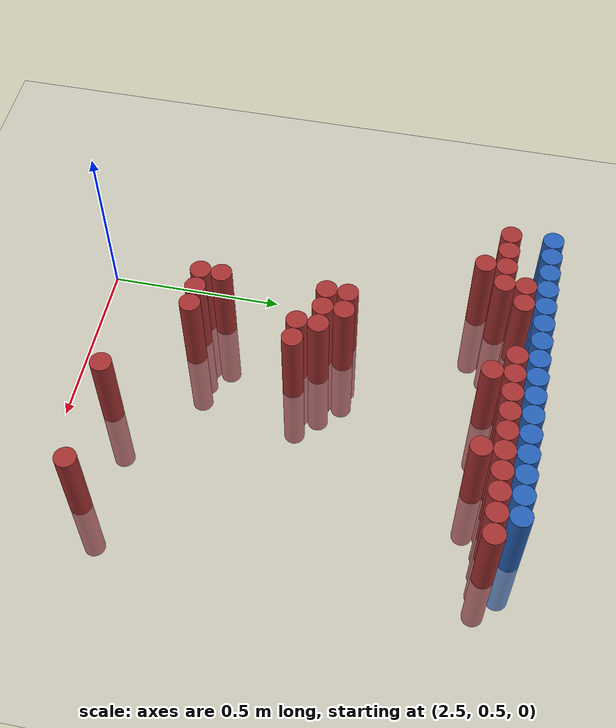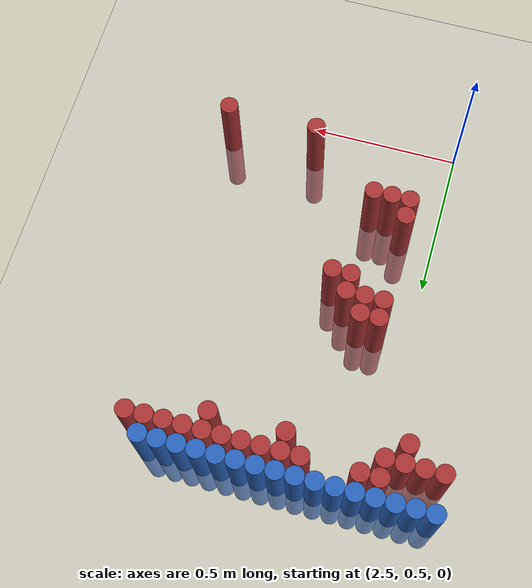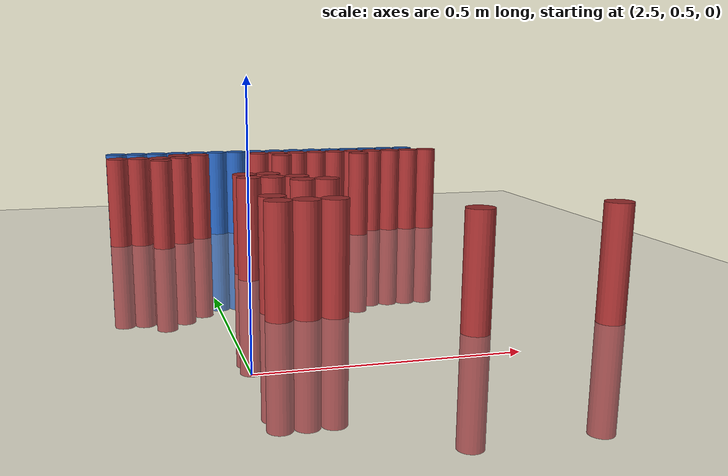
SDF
<sdf version="1.6">
 <world name="default">
  <model name="ground_plane">
   <static>1</static>
   <link name="link">
    <collision name="collision">
     <geometry><plane><normal>0 0 1</normal><size>100 100</size></plane></geometry>
     <surface><friction><ode><mu>100</mu><mu2>50</mu2></ode></friction></surface>
    </collision>
    <visual name="visual">
     <cast_shadows>0</cast_shadows>
     <geometry><plane><normal>0 0 1</normal><size>100 100</size></plane></geometry>
     <material>
      <script><uri>file://media/materials/scripts/gazebo.material</uri><name>Gazebo/Grey</name></script>
     </material>
    </visual>
   </link>
  </model>
  <model name="unit_cylinder_99">
   <static>1</static>
   <pose>2.310000 1.770000 0.000000 0.000000 0.000000 0.000000</pose>
   <link name="link">
    <inertial>
     <mass>1</mass>
     <inertia><ixx>0.145833</ixx><ixy>0</ixy><ixz>0</ixz><iyy>0.145833</iyy><iyz>0</iyz><izz>0.125</izz></inertia>
    </inertial>
    <collision name="collision">
     <geometry><cylinder><radius>0.030000</radius><length>0.5</length></cylinder></geometry>
    </collision>
    <visual name="visual">
     <geometry><cylinder><radius>0.030000</radius><length>0.5</length></cylinder></geometry>
     <material>
      <ambient>0.152000 0.379000 0.720000 1</ambient>
      <diffuse>0.152000 0.379000 0.720000 1</diffuse>
     </material>
     <material>
      <script><name>Gazebo/Grey</name><uri>file://media/materials/scripts/gazebo.material</uri></script>
     </material>
    </visual>
   </link>
  </model>
  <model name="unit_cylinder_100">
   <static>1</static>
   <pose>2.370000 1.770000 0.000000 0.000000 0.000000 0.000000</pose>
   <link name="link">
    <inertial>
     <mass>1</mass>
     <inertia><ixx>0.145833</ixx><ixy>0</ixy><ixz>0</ixz><iyy>0.145833</iyy><iyz>0</iyz><izz>0.125</izz></inertia>
    </inertial>
    <collision name="collision">
     <geometry><cylinder><radius>0.030000</radius><length>0.5</length></cylinder></geometry>
    </collision>
    <visual name="visual">
     <geometry><cylinder><radius>0.030000</radius><length>0.5</length></cylinder></geometry>
     <material>
      <ambient>0.152000 0.379000 0.720000 1</ambient>
      <diffuse>0.152000 0.379000 0.720000 1</diffuse>
     </material>
     <material>
      <script><name>Gazebo/Grey</name><uri>file://media/materials/scripts/gazebo.material</uri></script>
     </material>
    </visual>
   </link>
  </model>
  <model name="unit_cylinder_101">
   <static>1</static>
   <pose>2.430000 1.770000 0.000000 0.000000 0.000000 0.000000</pose>
   <link name="link">
    <inertial>
     <mass>1</mass>
     <inertia><ixx>0.145833</ixx><ixy>0</ixy><ixz>0</ixz><iyy>0.145833</iyy><iyz>0</iyz><izz>0.125</izz></inertia>
    </inertial>
    <collision name="collision">
     <geometry><cylinder><radius>0.030000</radius><length>0.5</length></cylinder></geometry>
    </collision>
    <visual name="visual">
     <geometry><cylinder><radius>0.030000</radius><length>0.5</length></cylinder></geometry>
     <material>
      <ambient>0.152000 0.379000 0.720000 1</ambient>
      <diffuse>0.152000 0.379000 0.720000 1</diffuse>
     </material>
     <material>
      <script><name>Gazebo/Grey</name><uri>file://media/materials/scripts/gazebo.material</uri></script>
     </material>
    </visual>
   </link>
  </model>
  <model name="unit_cylinder_102">
   <static>1</static>
   <pose>2.490000 1.770000 0.000000 0.000000 0.000000 0.000000</pose>
   <link name="link">
    <inertial>
     <mass>1</mass>
     <inertia><ixx>0.145833</ixx><ixy>0</ixy><ixz>0</ixz><iyy>0.145833</iyy><iyz>0</iyz><izz>0.125</izz></inertia>
    </inertial>
    <collision name="collision">
     <geometry><cylinder><radius>0.030000</radius><length>0.5</length></cylinder></geometry>
    </collision>
    <visual name="visual">
     <geometry><cylinder><radius>0.030000</radius><length>0.5</length></cylinder></geometry>
     <material>
      <ambient>0.152000 0.379000 0.720000 1</ambient>
      <diffuse>0.152000 0.379000 0.720000 1</diffuse>
     </material>
     <material>
      <script><name>Gazebo/Grey</name><uri>file://media/materials/scripts/gazebo.material</uri></script>
     </material>
    </visual>
   </link>
  </model>
  <model name="unit_cylinder_103">
   <static>1</static>
   <pose>2.550000 1.770000 0.000000 0.000000 0.000000 0.000000</pose>
   <link name="link">
    <inertial>
     <mass>1</mass>
     <inertia><ixx>0.145833</ixx><ixy>0</ixy><ixz>0</ixz><iyy>0.145833</iyy><iyz>0</iyz><izz>0.125</izz></inertia>
    </inertial>
    <collision name="collision">
     <geometry><cylinder><radius>0.030000</radius><length>0.5</length></cylinder></geometry>
    </collision>
    <visual name="visual">
     <geometry><cylinder><radius>0.030000</radius><length>0.5</length></cylinder></geometry>
     <material>
      <ambient>0.152000 0.379000 0.720000 1</ambient>
      <diffuse>0.152000 0.379000 0.720000 1</diffuse>
     </material>
     <material>
      <script><name>Gazebo/Grey</name><uri>file://media/materials/scripts/gazebo.material</uri></script>
     </material>
    </visual>
   </link>
  </model>
  <model name="unit_cylinder_104">
   <static>1</static>
   <pose>2.610000 1.770000 0.000000 0.000000 0.000000 0.000000</pose>
   <link name="link">
    <inertial>
     <mass>1</mass>
     <inertia><ixx>0.145833</ixx><ixy>0</ixy><ixz>0</ixz><iyy>0.145833</iyy><iyz>0</iyz><izz>0.125</izz></inertia>
    </inertial>
    <collision name="collision">
     <geometry><cylinder><radius>0.030000</radius><length>0.5</length></cylinder></geometry>
    </collision>
    <visual name="visual">
     <geometry><cylinder><radius>0.030000</radius><length>0.5</length></cylinder></geometry>
     <material>
      <ambient>0.152000 0.379000 0.720000 1</ambient>
      <diffuse>0.152000 0.379000 0.720000 1</diffuse>
     </material>
     <material>
      <script><name>Gazebo/Grey</name><uri>file://media/materials/scripts/gazebo.material</uri></script>
     </material>
    </visual>
   </link>
  </model>
  <model name="unit_cylinder_105">
   <static>1</static>
   <pose>2.670000 1.770000 0.000000 0.000000 0.000000 0.000000</pose>
   <link name="link">
    <inertial>
     <mass>1</mass>
     <inertia><ixx>0.145833</ixx><ixy>0</ixy><ixz>0</ixz><iyy>0.145833</iyy><iyz>0</iyz><izz>0.125</izz></inertia>
    </inertial>
    <collision name="collision">
     <geometry><cylinder><radius>0.030000</radius><length>0.5</length></cylinder></geometry>
    </collision>
    <visual name="visual">
     <geometry><cylinder><radius>0.030000</radius><length>0.5</length></cylinder></geometry>
     <material>
      <ambient>0.152000 0.379000 0.720000 1</ambient>
      <diffuse>0.152000 0.379000 0.720000 1</diffuse>
     </material>
     <material>
      <script><name>Gazebo/Grey</name><uri>file://media/materials/scripts/gazebo.material</uri></script>
     </material>
    </visual>
   </link>
  </model>
  <model name="unit_cylinder_106">
   <static>1</static>
   <pose>2.730000 1.770000 0.000000 0.000000 0.000000 0.000000</pose>
   <link name="link">
    <inertial>
     <mass>1</mass>
     <inertia><ixx>0.145833</ixx><ixy>0</ixy><ixz>0</ixz><iyy>0.145833</iyy><iyz>0</iyz><izz>0.125</izz></inertia>
    </inertial>
    <collision name="collision">
     <geometry><cylinder><radius>0.030000</radius><length>0.5</length></cylinder></geometry>
    </collision>
    <visual name="visual">
     <geometry><cylinder><radius>0.030000</radius><length>0.5</length></cylinder></geometry>
     <material>
      <ambient>0.152000 0.379000 0.720000 1</ambient>
      <diffuse>0.152000 0.379000 0.720000 1</diffuse>
     </material>
     <material>
      <script><name>Gazebo/Grey</name><uri>file://media/materials/scripts/gazebo.material</uri></script>
     </material>
    </visual>
   </link>
  </model>
  <model name="unit_cylinder_107">
   <static>1</static>
   <pose>2.790000 1.770000 0.000000 0.000000 0.000000 0.000000</pose>
   <link name="link">
    <inertial>
     <mass>1</mass>
     <inertia><ixx>0.145833</ixx><ixy>0</ixy><ixz>0</ixz><iyy>0.145833</iyy><iyz>0</iyz><izz>0.125</izz></inertia>
    </inertial>
    <collision name="collision">
     <geometry><cylinder><radius>0.030000</radius><length>0.5</length></cylinder></geometry>
    </collision>
    <visual name="visual">
     <geometry><cylinder><radius>0.030000</radius><length>0.5</length></cylinder></geometry>
     <material>
      <ambient>0.152000 0.379000 0.720000 1</ambient>
      <diffuse>0.152000 0.379000 0.720000 1</diffuse>
     </material>
     <material>
      <script><name>Gazebo/Grey</name><uri>file://media/materials/scripts/gazebo.material</uri></script>
     </material>
    </visual>
   </link>
  </model>
  <model name="unit_cylinder_108">
   <static>1</static>
   <pose>2.850000 1.770000 0.000000 0.000000 0.000000 0.000000</pose>
   <link name="link">
    <inertial>
     <mass>1</mass>
     <inertia><ixx>0.145833</ixx><ixy>0</ixy><ixz>0</ixz><iyy>0.145833</iyy><iyz>0</iyz><izz>0.125</izz></inertia>
    </inertial>
    <collision name="collision">
     <geometry><cylinder><radius>0.030000</radius><length>0.5</length></cylinder></geometry>
    </collision>
    <visual name="visual">
     <geometry><cylinder><radius>0.030000</radius><length>0.5</length></cylinder></geometry>
     <material>
      <ambient>0.152000 0.379000 0.720000 1</ambient>
      <diffuse>0.152000 0.379000 0.720000 1</diffuse>
     </material>
     <material>
      <script><name>Gazebo/Grey</name><uri>file://media/materials/scripts/gazebo.material</uri></script>
     </material>
    </visual>
   </link>
  </model>
  <model name="unit_cylinder_109">
   <static>1</static>
   <pose>2.910000 1.770000 0.000000 0.000000 0.000000 0.000000</pose>
   <link name="link">
    <inertial>
     <mass>1</mass>
     <inertia><ixx>0.145833</ixx><ixy>0</ixy><ixz>0</ixz><iyy>0.145833</iyy><iyz>0</iyz><izz>0.125</izz></inertia>
    </inertial>
    <collision name="collision">
     <geometry><cylinder><radius>0.030000</radius><length>0.5</length></cylinder></geometry>
    </collision>
    <visual name="visual">
     <geometry><cylinder><radius>0.030000</radius><length>0.5</length></cylinder></geometry>
     <material>
      <ambient>0.152000 0.379000 0.720000 1</ambient>
      <diffuse>0.152000 0.379000 0.720000 1</diffuse>
     </material>
     <material>
      <script><name>Gazebo/Grey</name><uri>file://media/materials/scripts/gazebo.material</uri></script>
     </material>
    </visual>
   </link>
  </model>
  <model name="unit_cylinder_110">
   <static>1</static>
   <pose>2.970000 1.770000 0.000000 0.000000 0.000000 0.000000</pose>
   <link name="link">
    <inertial>
     <mass>1</mass>
     <inertia><ixx>0.145833</ixx><ixy>0</ixy><ixz>0</ixz><iyy>0.145833</iyy><iyz>0</iyz><izz>0.125</izz></inertia>
    </inertial>
    <collision name="collision">
     <geometry><cylinder><radius>0.030000</radius><length>0.5</length></cylinder></geometry>
    </collision>
    <visual name="visual">
     <geometry><cylinder><radius>0.030000</radius><length>0.5</length></cylinder></geometry>
     <material>
      <ambient>0.152000 0.379000 0.720000 1</ambient>
      <diffuse>0.152000 0.379000 0.720000 1</diffuse>
     </material>
     <material>
      <script><name>Gazebo/Grey</name><uri>file://media/materials/scripts/gazebo.material</uri></script>
     </material>
    </visual>
   </link>
  </model>
  <model name="unit_cylinder_111">
   <static>1</static>
   <pose>3.030000 1.770000 0.000000 0.000000 0.000000 0.000000</pose>
   <link name="link">
    <inertial>
     <mass>1</mass>
     <inertia><ixx>0.145833</ixx><ixy>0</ixy><ixz>0</ixz><iyy>0.145833</iyy><iyz>0</iyz><izz>0.125</izz></inertia>
    </inertial>
    <collision name="collision">
     <geometry><cylinder><radius>0.030000</radius><length>0.5</length></cylinder></geometry>
    </collision>
    <visual name="visual">
     <geometry><cylinder><radius>0.030000</radius><length>0.5</length></cylinder></geometry>
     <material>
      <ambient>0.152000 0.379000 0.720000 1</ambient>
      <diffuse>0.152000 0.379000 0.720000 1</diffuse>
     </material>
     <material>
      <script><name>Gazebo/Grey</name><uri>file://media/materials/scripts/gazebo.material</uri></script>
     </material>
    </visual>
   </link>
  </model>
  <model name="unit_cylinder_112">
   <static>1</static>
   <pose>3.090000 1.770000 0.000000 0.000000 0.000000 0.000000</pose>
   <link name="link">
    <inertial>
     <mass>1</mass>
     <inertia><ixx>0.145833</ixx><ixy>0</ixy><ixz>0</ixz><iyy>0.145833</iyy><iyz>0</iyz><izz>0.125</izz></inertia>
    </inertial>
    <collision name="collision">
     <geometry><cylinder><radius>0.030000</radius><length>0.5</length></cylinder></geometry>
    </collision>
    <visual name="visual">
     <geometry><cylinder><radius>0.030000</radius><length>0.5</length></cylinder></geometry>
     <material>
      <ambient>0.152000 0.379000 0.720000 1</ambient>
      <diffuse>0.152000 0.379000 0.720000 1</diffuse>
     </material>
     <material>
      <script><name>Gazebo/Grey</name><uri>file://media/materials/scripts/gazebo.material</uri></script>
     </material>
    </visual>
   </link>
  </model>
  <model name="unit_cylinder_113">
   <static>1</static>
   <pose>3.150000 1.770000 0.000000 0.000000 0.000000 0.000000</pose>
   <link name="link">
    <inertial>
     <mass>1</mass>
     <inertia><ixx>0.145833</ixx><ixy>0</ixy><ixz>0</ixz><iyy>0.145833</iyy><iyz>0</iyz><izz>0.125</izz></inertia>
    </inertial>
    <collision name="collision">
     <geometry><cylinder><radius>0.030000</radius><length>0.5</length></cylinder></geometry>
    </collision>
    <visual name="visual">
     <geometry><cylinder><radius>0.030000</radius><length>0.5</length></cylinder></geometry>
     <material>
      <ambient>0.152000 0.379000 0.720000 1</ambient>
      <diffuse>0.152000 0.379000 0.720000 1</diffuse>
     </material>
     <material>
      <script><name>Gazebo/Grey</name><uri>file://media/materials/scripts/gazebo.material</uri></script>
     </material>
    </visual>
   </link>
  </model>
  <model name="unit_cylinder_114">
   <static>1</static>
   <pose>3.210000 1.770000 0.000000 0.000000 0.000000 0.000000</pose>
   <link name="link">
    <inertial>
     <mass>1</mass>
     <inertia><ixx>0.145833</ixx><ixy>0</ixy><ixz>0</ixz><iyy>0.145833</iyy><iyz>0</iyz><izz>0.125</izz></inertia>
    </inertial>
    <collision name="collision">
     <geometry><cylinder><radius>0.030000</radius><length>0.5</length></cylinder></geometry>
    </collision>
    <visual name="visual">
     <geometry><cylinder><radius>0.030000</radius><length>0.5</length></cylinder></geometry>
     <material>
      <ambient>0.152000 0.379000 0.720000 1</ambient>
      <diffuse>0.152000 0.379000 0.720000 1</diffuse>
     </material>
     <material>
      <script><name>Gazebo/Grey</name><uri>file://media/materials/scripts/gazebo.material</uri></script>
     </material>
    </visual>
   </link>
  </model>
  <model name="unit_cylinder_126">
   <static>1</static>
   <pose>2.490000 1.710000 0.000000 0.000000 0.000000 0.000000</pose>
   <link name="link">
    <inertial>
     <mass>1</mass>
     <inertia><ixx>0.145833</ixx><ixy>0</ixy><ixz>0</ixz><iyy>0.145833</iyy><iyz>0</iyz><izz>0.125</izz></inertia>
    </inertial>
    <collision name="collision">
     <geometry><cylinder><radius>0.030000</radius><length>0.5</length></cylinder></geometry>
    </collision>
    <visual name="visual">
     <geometry><cylinder><radius>0.030000</radius><length>0.5</length></cylinder></geometry>
     <material>
      <ambient>0.648000 0.192000 0.192000 1</ambient>
      <diffuse>0.648000 0.192000 0.192000 1</diffuse>
     </material>
     <material>
      <script><name>Gazebo/Grey</name><uri>file://media/materials/scripts/gazebo.material</uri></script>
     </material>
    </visual>
   </link>
  </model>
  <model name="unit_cylinder_127">
   <static>1</static>
   <pose>2.550000 1.710000 0.000000 0.000000 0.000000 0.000000</pose>
   <link name="link">
    <inertial>
     <mass>1</mass>
     <inertia><ixx>0.145833</ixx><ixy>0</ixy><ixz>0</ixz><iyy>0.145833</iyy><iyz>0</iyz><izz>0.125</izz></inertia>
    </inertial>
    <collision name="collision">
     <geometry><cylinder><radius>0.030000</radius><length>0.5</length></cylinder></geometry>
    </collision>
    <visual name="visual">
     <geometry><cylinder><radius>0.030000</radius><length>0.5</length></cylinder></geometry>
     <material>
      <ambient>0.648000 0.192000 0.192000 1</ambient>
      <diffuse>0.648000 0.192000 0.192000 1</diffuse>
     </material>
     <material>
      <script><name>Gazebo/Grey</name><uri>file://media/materials/scripts/gazebo.material</uri></script>
     </material>
    </visual>
   </link>
  </model>
  <model name="unit_cylinder_128">
   <static>1</static>
   <pose>2.730000 1.710000 0.000000 0.000000 0.000000 0.000000</pose>
   <link name="link">
    <inertial>
     <mass>1</mass>
     <inertia><ixx>0.145833</ixx><ixy>0</ixy><ixz>0</ixz><iyy>0.145833</iyy><iyz>0</iyz><izz>0.125</izz></inertia>
    </inertial>
    <collision name="collision">
     <geometry><cylinder><radius>0.030000</radius><length>0.5</length></cylinder></geometry>
    </collision>
    <visual name="visual">
     <geometry><cylinder><radius>0.030000</radius><length>0.5</length></cylinder></geometry>
     <material>
      <ambient>0.648000 0.192000 0.192000 1</ambient>
      <diffuse>0.648000 0.192000 0.192000 1</diffuse>
     </material>
     <material>
      <script><name>Gazebo/Grey</name><uri>file://media/materials/scripts/gazebo.material</uri></script>
     </material>
    </visual>
   </link>
  </model>
  <model name="unit_cylinder_129">
   <static>1</static>
   <pose>2.790000 1.710000 0.000000 0.000000 0.000000 0.000000</pose>
   <link name="link">
    <inertial>
     <mass>1</mass>
     <inertia><ixx>0.145833</ixx><ixy>0</ixy><ixz>0</ixz><iyy>0.145833</iyy><iyz>0</iyz><izz>0.125</izz></inertia>
    </inertial>
    <collision name="collision">
     <geometry><cylinder><radius>0.030000</radius><length>0.5</length></cylinder></geometry>
    </collision>
    <visual name="visual">
     <geometry><cylinder><radius>0.030000</radius><length>0.5</length></cylinder></geometry>
     <material>
      <ambient>0.648000 0.192000 0.192000 1</ambient>
      <diffuse>0.648000 0.192000 0.192000 1</diffuse>
     </material>
     <material>
      <script><name>Gazebo/Grey</name><uri>file://media/materials/scripts/gazebo.material</uri></script>
     </material>
    </visual>
   </link>
  </model>
  <model name="unit_cylinder_130">
   <static>1</static>
   <pose>2.850000 1.710000 0.000000 0.000000 0.000000 0.000000</pose>
   <link name="link">
    <inertial>
     <mass>1</mass>
     <inertia><ixx>0.145833</ixx><ixy>0</ixy><ixz>0</ixz><iyy>0.145833</iyy><iyz>0</iyz><izz>0.125</izz></inertia>
    </inertial>
    <collision name="collision">
     <geometry><cylinder><radius>0.030000</radius><length>0.5</length></cylinder></geometry>
    </collision>
    <visual name="visual">
     <geometry><cylinder><radius>0.030000</radius><length>0.5</length></cylinder></geometry>
     <material>
      <ambient>0.648000 0.192000 0.192000 1</ambient>
      <diffuse>0.648000 0.192000 0.192000 1</diffuse>
     </material>
     <material>
      <script><name>Gazebo/Grey</name><uri>file://media/materials/scripts/gazebo.material</uri></script>
     </material>
    </visual>
   </link>
  </model>
  <model name="unit_cylinder_131">
   <static>1</static>
   <pose>2.910000 1.710000 0.000000 0.000000 0.000000 0.000000</pose>
   <link name="link">
    <inertial>
     <mass>1</mass>
     <inertia><ixx>0.145833</ixx><ixy>0</ixy><ixz>0</ixz><iyy>0.145833</iyy><iyz>0</iyz><izz>0.125</izz></inertia>
    </inertial>
    <collision name="collision">
     <geometry><cylinder><radius>0.030000</radius><length>0.5</length></cylinder></geometry>
    </collision>
    <visual name="visual">
     <geometry><cylinder><radius>0.030000</radius><length>0.5</length></cylinder></geometry>
     <material>
      <ambient>0.648000 0.192000 0.192000 1</ambient>
      <diffuse>0.648000 0.192000 0.192000 1</diffuse>
     </material>
     <material>
      <script><name>Gazebo/Grey</name><uri>file://media/materials/scripts/gazebo.material</uri></script>
     </material>
    </visual>
   </link>
  </model>
  <model name="unit_cylinder_132">
   <static>1</static>
   <pose>2.970000 1.710000 0.000000 0.000000 0.000000 0.000000</pose>
   <link name="link">
    <inertial>
     <mass>1</mass>
     <inertia><ixx>0.145833</ixx><ixy>0</ixy><ixz>0</ixz><iyy>0.145833</iyy><iyz>0</iyz><izz>0.125</izz></inertia>
    </inertial>
    <collision name="collision">
     <geometry><cylinder><radius>0.030000</radius><length>0.5</length></cylinder></geometry>
    </collision>
    <visual name="visual">
     <geometry><cylinder><radius>0.030000</radius><length>0.5</length></cylinder></geometry>
     <material>
      <ambient>0.648000 0.192000 0.192000 1</ambient>
      <diffuse>0.648000 0.192000 0.192000 1</diffuse>
     </material>
     <material>
      <script><name>Gazebo/Grey</name><uri>file://media/materials/scripts/gazebo.material</uri></script>
     </material>
    </visual>
   </link>
  </model>
  <model name="unit_cylinder_133">
   <static>1</static>
   <pose>3.030000 1.710000 0.000000 0.000000 0.000000 0.000000</pose>
   <link name="link">
    <inertial>
     <mass>1</mass>
     <inertia><ixx>0.145833</ixx><ixy>0</ixy><ixz>0</ixz><iyy>0.145833</iyy><iyz>0</iyz><izz>0.125</izz></inertia>
    </inertial>
    <collision name="collision">
     <geometry><cylinder><radius>0.030000</radius><length>0.5</length></cylinder></geometry>
    </collision>
    <visual name="visual">
     <geometry><cylinder><radius>0.030000</radius><length>0.5</length></cylinder></geometry>
     <material>
      <ambient>0.648000 0.192000 0.192000 1</ambient>
      <diffuse>0.648000 0.192000 0.192000 1</diffuse>
     </material>
     <material>
      <script><name>Gazebo/Grey</name><uri>file://media/materials/scripts/gazebo.material</uri></script>
     </material>
    </visual>
   </link>
  </model>
  <model name="unit_cylinder_134">
   <static>1</static>
   <pose>3.090000 1.710000 0.000000 0.000000 0.000000 0.000000</pose>
   <link name="link">
    <inertial>
     <mass>1</mass>
     <inertia><ixx>0.145833</ixx><ixy>0</ixy><ixz>0</ixz><iyy>0.145833</iyy><iyz>0</iyz><izz>0.125</izz></inertia>
    </inertial>
    <collision name="collision">
     <geometry><cylinder><radius>0.030000</radius><length>0.5</length></cylinder></geometry>
    </collision>
    <visual name="visual">
     <geometry><cylinder><radius>0.030000</radius><length>0.5</length></cylinder></geometry>
     <material>
      <ambient>0.648000 0.192000 0.192000 1</ambient>
      <diffuse>0.648000 0.192000 0.192000 1</diffuse>
     </material>
     <material>
      <script><name>Gazebo/Grey</name><uri>file://media/materials/scripts/gazebo.material</uri></script>
     </material>
    </visual>
   </link>
  </model>
  <model name="unit_cylinder_135">
   <static>1</static>
   <pose>3.150000 1.710000 0.000000 0.000000 0.000000 0.000000</pose>
   <link name="link">
    <inertial>
     <mass>1</mass>
     <inertia><ixx>0.145833</ixx><ixy>0</ixy><ixz>0</ixz><iyy>0.145833</iyy><iyz>0</iyz><izz>0.125</izz></inertia>
    </inertial>
    <collision name="collision">
     <geometry><cylinder><radius>0.030000</radius><length>0.5</length></cylinder></geometry>
    </collision>
    <visual name="visual">
     <geometry><cylinder><radius>0.030000</radius><length>0.5</length></cylinder></geometry>
     <material>
      <ambient>0.648000 0.192000 0.192000 1</ambient>
      <diffuse>0.648000 0.192000 0.192000 1</diffuse>
     </material>
     <material>
      <script><name>Gazebo/Grey</name><uri>file://media/materials/scripts/gazebo.material</uri></script>
     </material>
    </visual>
   </link>
  </model>
  <model name="unit_cylinder_136">
   <static>1</static>
   <pose>3.210000 1.710000 0.000000 0.000000 0.000000 0.000000</pose>
   <link name="link">
    <inertial>
     <mass>1</mass>
     <inertia><ixx>0.145833</ixx><ixy>0</ixy><ixz>0</ixz><iyy>0.145833</iyy><iyz>0</iyz><izz>0.125</izz></inertia>
    </inertial>
    <collision name="collision">
     <geometry><cylinder><radius>0.030000</radius><length>0.5</length></cylinder></geometry>
    </collision>
    <visual name="visual">
     <geometry><cylinder><radius>0.030000</radius><length>0.5</length></cylinder></geometry>
     <material>
      <ambient>0.648000 0.192000 0.192000 1</ambient>
      <diffuse>0.648000 0.192000 0.192000 1</diffuse>
     </material>
     <material>
      <script><name>Gazebo/Grey</name><uri>file://media/materials/scripts/gazebo.material</uri></script>
     </material>
    </visual>
   </link>
  </model>
  <model name="unit_cylinder_137">
   <static>1</static>
   <pose>3.270000 1.710000 0.000000 0.000000 0.000000 0.000000</pose>
   <link name="link">
    <inertial>
     <mass>1</mass>
     <inertia><ixx>0.145833</ixx><ixy>0</ixy><ixz>0</ixz><iyy>0.145833</iyy><iyz>0</iyz><izz>0.125</izz></inertia>
    </inertial>
    <collision name="collision">
     <geometry><cylinder><radius>0.030000</radius><length>0.5</length></cylinder></geometry>
    </collision>
    <visual name="visual">
     <geometry><cylinder><radius>0.030000</radius><length>0.5</length></cylinder></geometry>
     <material>
      <ambient>0.648000 0.192000 0.192000 1</ambient>
      <diffuse>0.648000 0.192000 0.192000 1</diffuse>
     </material>
     <material>
      <script><name>Gazebo/Grey</name><uri>file://media/materials/scripts/gazebo.material</uri></script>
     </material>
    </visual>
   </link>
  </model>
  <model name="unit_cylinder_144">
   <static>1</static>
   <pose>2.310000 1.650000 0.000000 0.000000 0.000000 0.000000</pose>
   <link name="link">
    <inertial>
     <mass>1</mass>
     <inertia><ixx>0.145833</ixx><ixy>0</ixy><ixz>0</ixz><iyy>0.145833</iyy><iyz>0</iyz><izz>0.125</izz></inertia>
    </inertial>
    <collision name="collision">
     <geometry><cylinder><radius>0.030000</radius><length>0.5</length></cylinder></geometry>
    </collision>
    <visual name="visual">
     <geometry><cylinder><radius>0.030000</radius><length>0.5</length></cylinder></geometry>
     <material>
      <ambient>0.648000 0.192000 0.192000 1</ambient>
      <diffuse>0.648000 0.192000 0.192000 1</diffuse>
     </material>
     <material>
      <script><name>Gazebo/Grey</name><uri>file://media/materials/scripts/gazebo.material</uri></script>
     </material>
    </visual>
   </link>
  </model>
  <model name="unit_cylinder_145">
   <static>1</static>
   <pose>2.370000 1.650000 0.000000 0.000000 0.000000 0.000000</pose>
   <link name="link">
    <inertial>
     <mass>1</mass>
     <inertia><ixx>0.145833</ixx><ixy>0</ixy><ixz>0</ixz><iyy>0.145833</iyy><iyz>0</iyz><izz>0.125</izz></inertia>
    </inertial>
    <collision name="collision">
     <geometry><cylinder><radius>0.030000</radius><length>0.5</length></cylinder></geometry>
    </collision>
    <visual name="visual">
     <geometry><cylinder><radius>0.030000</radius><length>0.5</length></cylinder></geometry>
     <material>
      <ambient>0.648000 0.192000 0.192000 1</ambient>
      <diffuse>0.648000 0.192000 0.192000 1</diffuse>
     </material>
     <material>
      <script><name>Gazebo/Grey</name><uri>file://media/materials/scripts/gazebo.material</uri></script>
     </material>
    </visual>
   </link>
  </model>
  <model name="unit_cylinder_146">
   <static>1</static>
   <pose>2.430000 1.650000 0.000000 0.000000 0.000000 0.000000</pose>
   <link name="link">
    <inertial>
     <mass>1</mass>
     <inertia><ixx>0.145833</ixx><ixy>0</ixy><ixz>0</ixz><iyy>0.145833</iyy><iyz>0</iyz><izz>0.125</izz></inertia>
    </inertial>
    <collision name="collision">
     <geometry><cylinder><radius>0.030000</radius><length>0.5</length></cylinder></geometry>
    </collision>
    <visual name="visual">
     <geometry><cylinder><radius>0.030000</radius><length>0.5</length></cylinder></geometry>
     <material>
      <ambient>0.648000 0.192000 0.192000 1</ambient>
      <diffuse>0.648000 0.192000 0.192000 1</diffuse>
     </material>
     <material>
      <script><name>Gazebo/Grey</name><uri>file://media/materials/scripts/gazebo.material</uri></script>
     </material>
    </visual>
   </link>
  </model>
  <model name="unit_cylinder_147">
   <static>1</static>
   <pose>2.490000 1.650000 0.000000 0.000000 0.000000 0.000000</pose>
   <link name="link">
    <inertial>
     <mass>1</mass>
     <inertia><ixx>0.145833</ixx><ixy>0</ixy><ixz>0</ixz><iyy>0.145833</iyy><iyz>0</iyz><izz>0.125</izz></inertia>
    </inertial>
    <collision name="collision">
     <geometry><cylinder><radius>0.030000</radius><length>0.5</length></cylinder></geometry>
    </collision>
    <visual name="visual">
     <geometry><cylinder><radius>0.030000</radius><length>0.5</length></cylinder></geometry>
     <material>
      <ambient>0.648000 0.192000 0.192000 1</ambient>
      <diffuse>0.648000 0.192000 0.192000 1</diffuse>
     </material>
     <material>
      <script><name>Gazebo/Grey</name><uri>file://media/materials/scripts/gazebo.material</uri></script>
     </material>
    </visual>
   </link>
  </model>
  <model name="unit_cylinder_148">
   <static>1</static>
   <pose>2.790000 1.650000 0.000000 0.000000 0.000000 0.000000</pose>
   <link name="link">
    <inertial>
     <mass>1</mass>
     <inertia><ixx>0.145833</ixx><ixy>0</ixy><ixz>0</ixz><iyy>0.145833</iyy><iyz>0</iyz><izz>0.125</izz></inertia>
    </inertial>
    <collision name="collision">
     <geometry><cylinder><radius>0.030000</radius><length>0.5</length></cylinder></geometry>
    </collision>
    <visual name="visual">
     <geometry><cylinder><radius>0.030000</radius><length>0.5</length></cylinder></geometry>
     <material>
      <ambient>0.648000 0.192000 0.192000 1</ambient>
      <diffuse>0.648000 0.192000 0.192000 1</diffuse>
     </material>
     <material>
      <script><name>Gazebo/Grey</name><uri>file://media/materials/scripts/gazebo.material</uri></script>
     </material>
    </visual>
   </link>
  </model>
  <model name="unit_cylinder_149">
   <static>1</static>
   <pose>3.030000 1.650000 0.000000 0.000000 0.000000 0.000000</pose>
   <link name="link">
    <inertial>
     <mass>1</mass>
     <inertia><ixx>0.145833</ixx><ixy>0</ixy><ixz>0</ixz><iyy>0.145833</iyy><iyz>0</iyz><izz>0.125</izz></inertia>
    </inertial>
    <collision name="collision">
     <geometry><cylinder><radius>0.030000</radius><length>0.5</length></cylinder></geometry>
    </collision>
    <visual name="visual">
     <geometry><cylinder><radius>0.030000</radius><length>0.5</length></cylinder></geometry>
     <material>
      <ambient>0.648000 0.192000 0.192000 1</ambient>
      <diffuse>0.648000 0.192000 0.192000 1</diffuse>
     </material>
     <material>
      <script><name>Gazebo/Grey</name><uri>file://media/materials/scripts/gazebo.material</uri></script>
     </material>
    </visual>
   </link>
  </model>
  <model name="unit_cylinder_156">
   <static>1</static>
   <pose>2.430000 1.590000 0.000000 0.000000 0.000000 0.000000</pose>
   <link name="link">
    <inertial>
     <mass>1</mass>
     <inertia><ixx>0.145833</ixx><ixy>0</ixy><ixz>0</ixz><iyy>0.145833</iyy><iyz>0</iyz><izz>0.125</izz></inertia>
    </inertial>
    <collision name="collision">
     <geometry><cylinder><radius>0.030000</radius><length>0.5</length></cylinder></geometry>
    </collision>
    <visual name="visual">
     <geometry><cylinder><radius>0.030000</radius><length>0.5</length></cylinder></geometry>
     <material>
      <ambient>0.648000 0.192000 0.192000 1</ambient>
      <diffuse>0.648000 0.192000 0.192000 1</diffuse>
     </material>
     <material>
      <script><name>Gazebo/Grey</name><uri>file://media/materials/scripts/gazebo.material</uri></script>
     </material>
    </visual>
   </link>
  </model>
  <model name="unit_cylinder_176">
   <static>1</static>
   <pose>2.610000 1.230000 0.000000 0.000000 0.000000 0.000000</pose>
   <link name="link">
    <inertial>
     <mass>1</mass>
     <inertia><ixx>0.145833</ixx><ixy>0</ixy><ixz>0</ixz><iyy>0.145833</iyy><iyz>0</iyz><izz>0.125</izz></inertia>
    </inertial>
    <collision name="collision">
     <geometry><cylinder><radius>0.030000</radius><length>0.5</length></cylinder></geometry>
    </collision>
    <visual name="visual">
     <geometry><cylinder><radius>0.030000</radius><length>0.5</length></cylinder></geometry>
     <material>
      <ambient>0.648000 0.192000 0.192000 1</ambient>
      <diffuse>0.648000 0.192000 0.192000 1</diffuse>
     </material>
     <material>
      <script><name>Gazebo/Grey</name><uri>file://media/materials/scripts/gazebo.material</uri></script>
     </material>
    </visual>
   </link>
  </model>
  <model name="unit_cylinder_177">
   <static>1</static>
   <pose>2.670000 1.230000 0.000000 0.000000 0.000000 0.000000</pose>
   <link name="link">
    <inertial>
     <mass>1</mass>
     <inertia><ixx>0.145833</ixx><ixy>0</ixy><ixz>0</ixz><iyy>0.145833</iyy><iyz>0</iyz><izz>0.125</izz></inertia>
    </inertial>
    <collision name="collision">
     <geometry><cylinder><radius>0.030000</radius><length>0.5</length></cylinder></geometry>
    </collision>
    <visual name="visual">
     <geometry><cylinder><radius>0.030000</radius><length>0.5</length></cylinder></geometry>
     <material>
      <ambient>0.648000 0.192000 0.192000 1</ambient>
      <diffuse>0.648000 0.192000 0.192000 1</diffuse>
     </material>
     <material>
      <script><name>Gazebo/Grey</name><uri>file://media/materials/scripts/gazebo.material</uri></script>
     </material>
    </visual>
   </link>
  </model>
  <model name="unit_cylinder_179">
   <static>1</static>
   <pose>2.610000 1.170000 0.000000 0.000000 0.000000 0.000000</pose>
   <link name="link">
    <inertial>
     <mass>1</mass>
     <inertia><ixx>0.145833</ixx><ixy>0</ixy><ixz>0</ixz><iyy>0.145833</iyy><iyz>0</iyz><izz>0.125</izz></inertia>
    </inertial>
    <collision name="collision">
     <geometry><cylinder><radius>0.030000</radius><length>0.5</length></cylinder></geometry>
    </collision>
    <visual name="visual">
     <geometry><cylinder><radius>0.030000</radius><length>0.5</length></cylinder></geometry>
     <material>
      <ambient>0.648000 0.192000 0.192000 1</ambient>
      <diffuse>0.648000 0.192000 0.192000 1</diffuse>
     </material>
     <material>
      <script><name>Gazebo/Grey</name><uri>file://media/materials/scripts/gazebo.material</uri></script>
     </material>
    </visual>
   </link>
  </model>
  <model name="unit_cylinder_180">
   <static>1</static>
   <pose>2.670000 1.170000 0.000000 0.000000 0.000000 0.000000</pose>
   <link name="link">
    <inertial>
     <mass>1</mass>
     <inertia><ixx>0.145833</ixx><ixy>0</ixy><ixz>0</ixz><iyy>0.145833</iyy><iyz>0</iyz><izz>0.125</izz></inertia>
    </inertial>
    <collision name="collision">
     <geometry><cylinder><radius>0.030000</radius><length>0.5</length></cylinder></geometry>
    </collision>
    <visual name="visual">
     <geometry><cylinder><radius>0.030000</radius><length>0.5</length></cylinder></geometry>
     <material>
      <ambient>0.648000 0.192000 0.192000 1</ambient>
      <diffuse>0.648000 0.192000 0.192000 1</diffuse>
     </material>
     <material>
      <script><name>Gazebo/Grey</name><uri>file://media/materials/scripts/gazebo.material</uri></script>
     </material>
    </visual>
   </link>
  </model>
  <model name="unit_cylinder_181">
   <static>1</static>
   <pose>2.730000 1.170000 0.000000 0.000000 0.000000 0.000000</pose>
   <link name="link">
    <inertial>
     <mass>1</mass>
     <inertia><ixx>0.145833</ixx><ixy>0</ixy><ixz>0</ixz><iyy>0.145833</iyy><iyz>0</iyz><izz>0.125</izz></inertia>
    </inertial>
    <collision name="collision">
     <geometry><cylinder><radius>0.030000</radius><length>0.5</length></cylinder></geometry>
    </collision>
    <visual name="visual">
     <geometry><cylinder><radius>0.030000</radius><length>0.5</length></cylinder></geometry>
     <material>
      <ambient>0.648000 0.192000 0.192000 1</ambient>
      <diffuse>0.648000 0.192000 0.192000 1</diffuse>
     </material>
     <material>
      <script><name>Gazebo/Grey</name><uri>file://media/materials/scripts/gazebo.material</uri></script>
     </material>
    </visual>
   </link>
  </model>
  <model name="unit_cylinder_186">
   <static>1</static>
   <pose>2.730000 1.110000 0.000000 0.000000 0.000000 0.000000</pose>
   <link name="link">
    <inertial>
     <mass>1</mass>
     <inertia><ixx>0.145833</ixx><ixy>0</ixy><ixz>0</ixz><iyy>0.145833</iyy><iyz>0</iyz><izz>0.125</izz></inertia>
    </inertial>
    <collision name="collision">
     <geometry><cylinder><radius>0.030000</radius><length>0.5</length></cylinder></geometry>
    </collision>
    <visual name="visual">
     <geometry><cylinder><radius>0.030000</radius><length>0.5</length></cylinder></geometry>
     <material>
      <ambient>0.648000 0.192000 0.192000 1</ambient>
      <diffuse>0.648000 0.192000 0.192000 1</diffuse>
     </material>
     <material>
      <script><name>Gazebo/Grey</name><uri>file://media/materials/scripts/gazebo.material</uri></script>
     </material>
    </visual>
   </link>
  </model>
  <model name="unit_cylinder_187">
   <static>1</static>
   <pose>2.790000 1.110000 0.000000 0.000000 0.000000 0.000000</pose>
   <link name="link">
    <inertial>
     <mass>1</mass>
     <inertia><ixx>0.145833</ixx><ixy>0</ixy><ixz>0</ixz><iyy>0.145833</iyy><iyz>0</iyz><izz>0.125</izz></inertia>
    </inertial>
    <collision name="collision">
     <geometry><cylinder><radius>0.030000</radius><length>0.5</length></cylinder></geometry>
    </collision>
    <visual name="visual">
     <geometry><cylinder><radius>0.030000</radius><length>0.5</length></cylinder></geometry>
     <material>
      <ambient>0.648000 0.192000 0.192000 1</ambient>
      <diffuse>0.648000 0.192000 0.192000 1</diffuse>
     </material>
     <material>
      <script><name>Gazebo/Grey</name><uri>file://media/materials/scripts/gazebo.material</uri></script>
     </material>
    </visual>
   </link>
  </model>
  <model name="unit_cylinder_201">
   <static>1</static>
   <pose>2.610000 0.870000 0.000000 0.000000 0.000000 0.000000</pose>
   <link name="link">
    <inertial>
     <mass>1</mass>
     <inertia><ixx>0.145833</ixx><ixy>0</ixy><ixz>0</ixz><iyy>0.145833</iyy><iyz>0</iyz><izz>0.125</izz></inertia>
    </inertial>
    <collision name="collision">
     <geometry><cylinder><radius>0.030000</radius><length>0.5</length></cylinder></geometry>
    </collision>
    <visual name="visual">
     <geometry><cylinder><radius>0.030000</radius><length>0.5</length></cylinder></geometry>
     <material>
      <ambient>0.648000 0.192000 0.192000 1</ambient>
      <diffuse>0.648000 0.192000 0.192000 1</diffuse>
     </material>
     <material>
      <script><name>Gazebo/Grey</name><uri>file://media/materials/scripts/gazebo.material</uri></script>
     </material>
    </visual>
   </link>
  </model>
  <model name="unit_cylinder_205">
   <static>1</static>
   <pose>2.610000 0.810000 0.000000 0.000000 0.000000 0.000000</pose>
   <link name="link">
    <inertial>
     <mass>1</mass>
     <inertia><ixx>0.145833</ixx><ixy>0</ixy><ixz>0</ixz><iyy>0.145833</iyy><iyz>0</iyz><izz>0.125</izz></inertia>
    </inertial>
    <collision name="collision">
     <geometry><cylinder><radius>0.030000</radius><length>0.5</length></cylinder></geometry>
    </collision>
    <visual name="visual">
     <geometry><cylinder><radius>0.030000</radius><length>0.5</length></cylinder></geometry>
     <material>
      <ambient>0.648000 0.192000 0.192000 1</ambient>
      <diffuse>0.648000 0.192000 0.192000 1</diffuse>
     </material>
     <material>
      <script><name>Gazebo/Grey</name><uri>file://media/materials/scripts/gazebo.material</uri></script>
     </material>
    </visual>
   </link>
  </model>
  <model name="unit_cylinder_206">
   <static>1</static>
   <pose>2.670000 0.810000 0.000000 0.000000 0.000000 0.000000</pose>
   <link name="link">
    <inertial>
     <mass>1</mass>
     <inertia><ixx>0.145833</ixx><ixy>0</ixy><ixz>0</ixz><iyy>0.145833</iyy><iyz>0</iyz><izz>0.125</izz></inertia>
    </inertial>
    <collision name="collision">
     <geometry><cylinder><radius>0.030000</radius><length>0.5</length></cylinder></geometry>
    </collision>
    <visual name="visual">
     <geometry><cylinder><radius>0.030000</radius><length>0.5</length></cylinder></geometry>
     <material>
      <ambient>0.648000 0.192000 0.192000 1</ambient>
      <diffuse>0.648000 0.192000 0.192000 1</diffuse>
     </material>
     <material>
      <script><name>Gazebo/Grey</name><uri>file://media/materials/scripts/gazebo.material</uri></script>
     </material>
    </visual>
   </link>
  </model>
  <model name="unit_cylinder_207">
   <static>1</static>
   <pose>2.730000 0.810000 0.000000 0.000000 0.000000 0.000000</pose>
   <link name="link">
    <inertial>
     <mass>1</mass>
     <inertia><ixx>0.145833</ixx><ixy>0</ixy><ixz>0</ixz><iyy>0.145833</iyy><iyz>0</iyz><izz>0.125</izz></inertia>
    </inertial>
    <collision name="collision">
     <geometry><cylinder><radius>0.030000</radius><length>0.5</length></cylinder></geometry>
    </collision>
    <visual name="visual">
     <geometry><cylinder><radius>0.030000</radius><length>0.5</length></cylinder></geometry>
     <material>
      <ambient>0.648000 0.192000 0.192000 1</ambient>
      <diffuse>0.648000 0.192000 0.192000 1</diffuse>
     </material>
     <material>
      <script><name>Gazebo/Grey</name><uri>file://media/materials/scripts/gazebo.material</uri></script>
     </material>
    </visual>
   </link>
  </model>
  <model name="unit_cylinder_221">
   <static>1</static>
   <pose>2.970000 0.630000 0.000000 0.000000 0.000000 0.000000</pose>
   <link name="link">
    <inertial>
     <mass>1</mass>
     <inertia><ixx>0.145833</ixx><ixy>0</ixy><ixz>0</ixz><iyy>0.145833</iyy><iyz>0</iyz><izz>0.125</izz></inertia>
    </inertial>
    <collision name="collision">
     <geometry><cylinder><radius>0.030000</radius><length>0.5</length></cylinder></geometry>
    </collision>
    <visual name="visual">
     <geometry><cylinder><radius>0.030000</radius><length>0.5</length></cylinder></geometry>
     <material>
      <ambient>0.648000 0.192000 0.192000 1</ambient>
      <diffuse>0.648000 0.192000 0.192000 1</diffuse>
     </material>
     <material>
      <script><name>Gazebo/Grey</name><uri>file://media/materials/scripts/gazebo.material</uri></script>
     </material>
    </visual>
   </link>
  </model>
  <model name="unit_cylinder_222">
   <static>1</static>
   <pose>3.270000 0.630000 0.000000 0.000000 0.000000 0.000000</pose>
   <link name="link">
    <inertial>
     <mass>1</mass>
     <inertia><ixx>0.145833</ixx><ixy>0</ixy><ixz>0</ixz><iyy>0.145833</iyy><iyz>0</iyz><izz>0.125</izz></inertia>
    </inertial>
    <collision name="collision">
     <geometry><cylinder><radius>0.030000</radius><length>0.5</length></cylinder></geometry>
    </collision>
    <visual name="visual">
     <geometry><cylinder><radius>0.030000</radius><length>0.5</length></cylinder></geometry>
     <material>
      <ambient>0.648000 0.192000 0.192000 1</ambient>
      <diffuse>0.648000 0.192000 0.192000 1</diffuse>
     </material>
     <material>
      <script><name>Gazebo/Grey</name><uri>file://media/materials/scripts/gazebo.material</uri></script>
     </material>
    </visual>
   </link>
  </model>
 </world>
</sdf>
